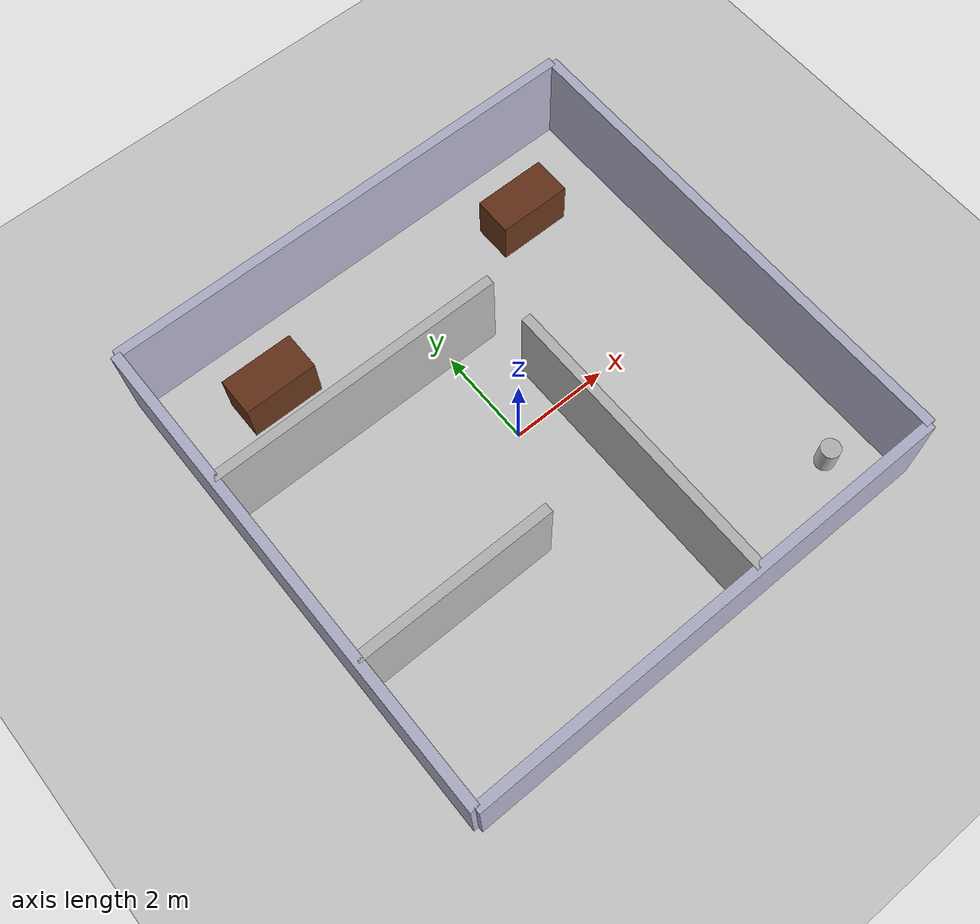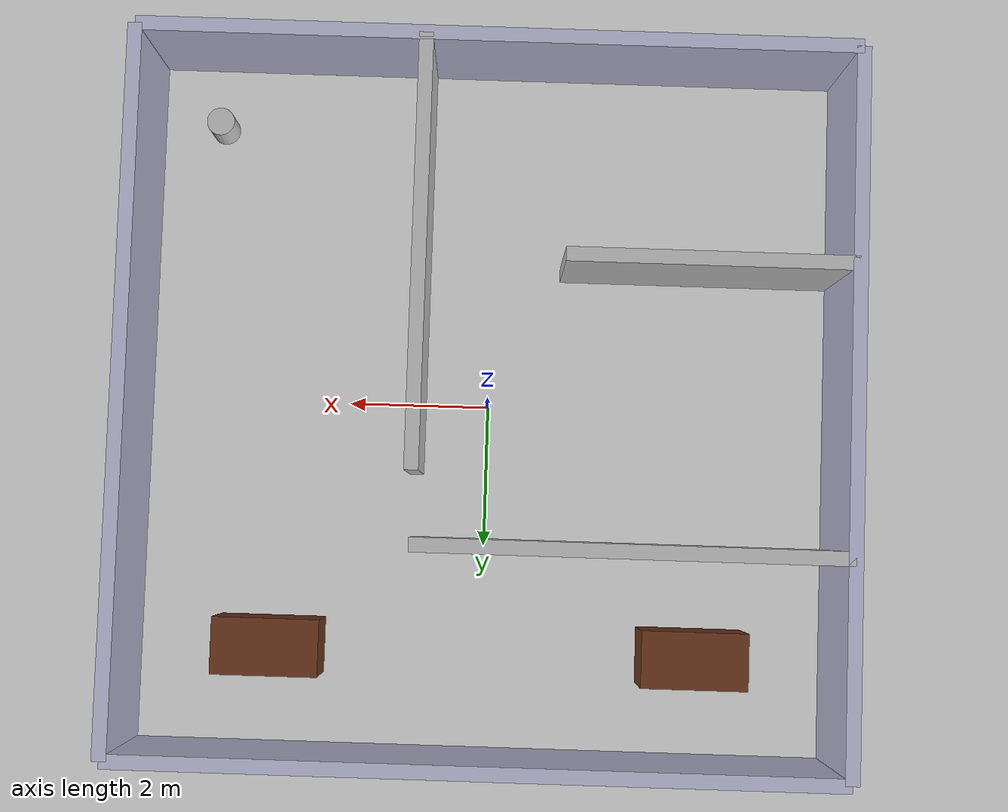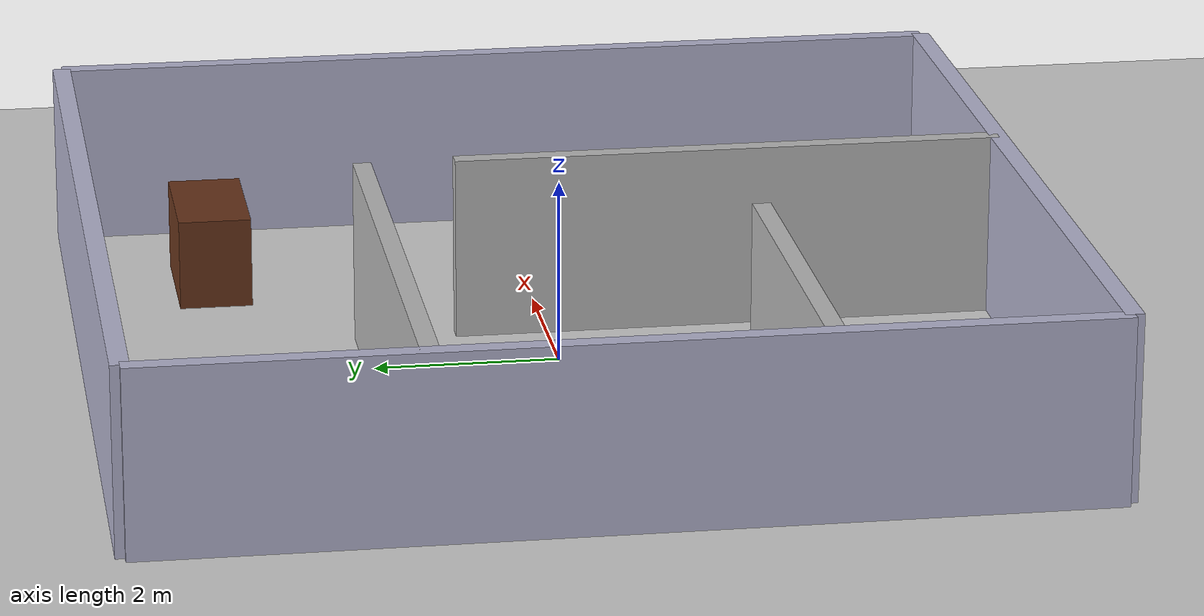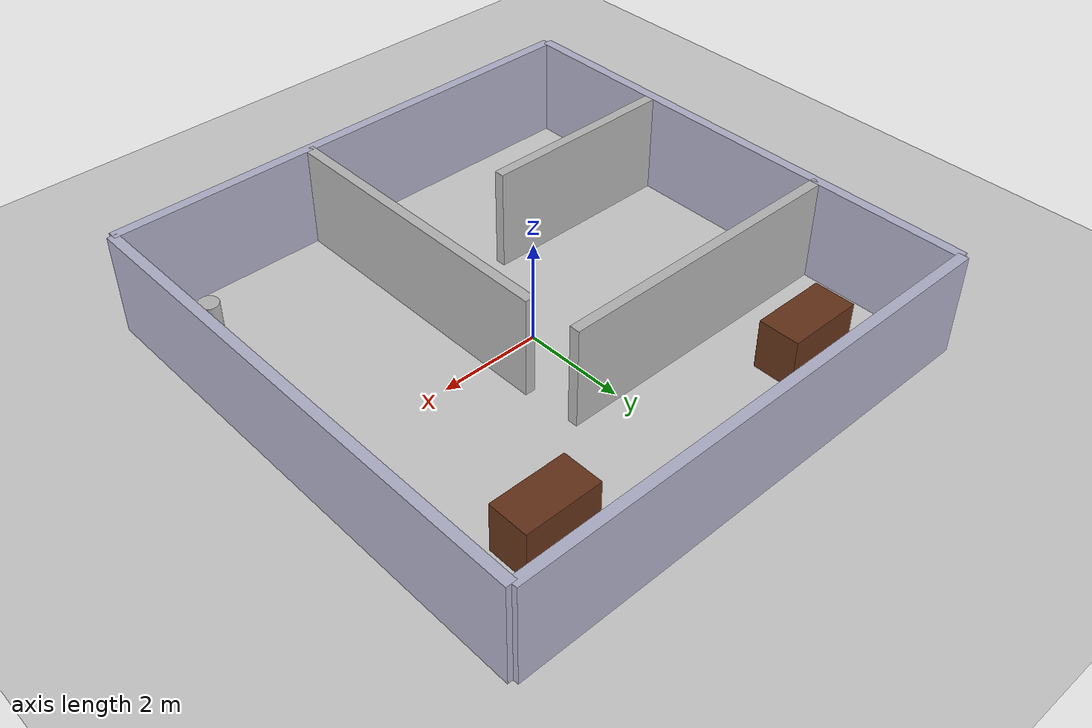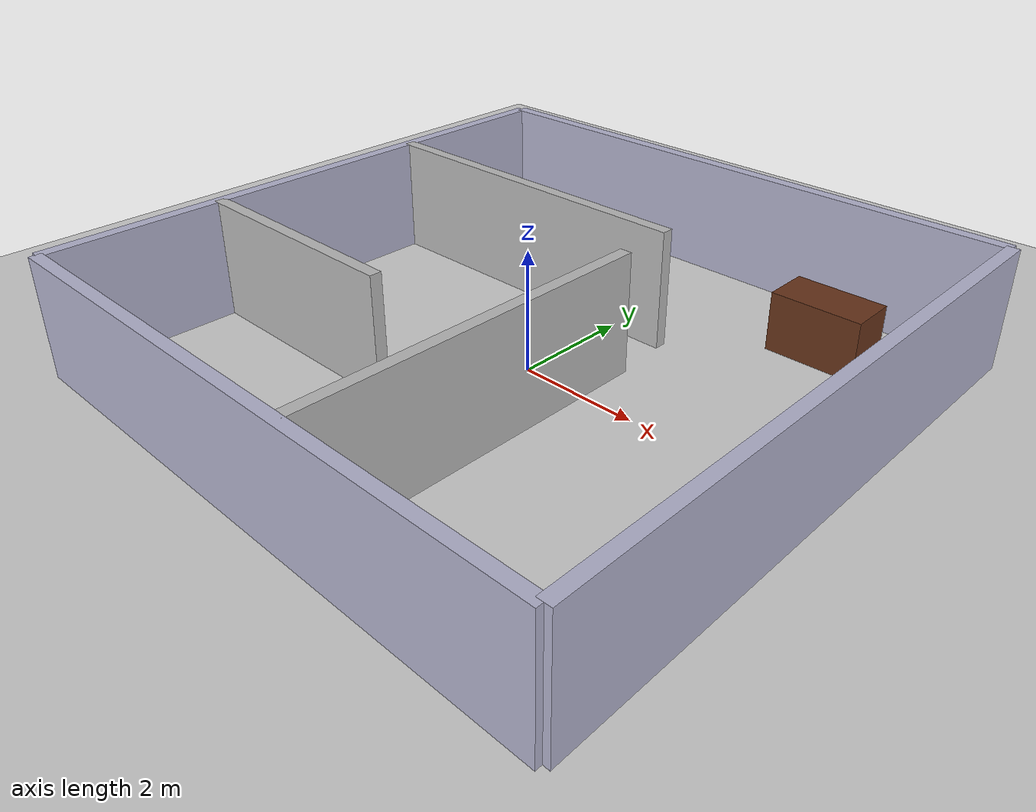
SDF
<?xml version="1.0"?>
<sdf version="1.10">
  <world name="world_1">
    <physics name="1ms" type="ignored">
      <max_step_size>0.001</max_step_size>
      <real_time_factor>1.0</real_time_factor>
    </physics>

    <plugin filename="gz-sim-physics-system" name="gz::sim::systems::Physics"/>
    <plugin filename="gz-sim-user-commands-system" name="gz::sim::systems::UserCommands"/>
    <plugin filename="gz-sim-scene-broadcaster-system" name="gz::sim::systems::SceneBroadcaster"/>
    <plugin filename="gz-sim-sensors-system" name="gz::sim::systems::Sensors">
      <render_engine>ogre2</render_engine>
    </plugin>

    <light type="directional" name="sun">
      <cast_shadows>true</cast_shadows>
      <pose>0 0 10 0 0 0</pose>
      <diffuse>0.95 0.95 0.95 1</diffuse>
      <specular>0.25 0.25 0.25 1</specular>
      <direction>-0.5 0.1 -0.9</direction>
    </light>

    <model name="ground_plane">
      <static>true</static>
      <link name="link">
        <collision name="collision">
          <geometry>
            <plane>
              <normal>0 0 1</normal>
              <size>100 100</size>
            </plane>
          </geometry>
        </collision>
        <visual name="visual">
          <geometry>
            <plane>
              <normal>0 0 1</normal>
              <size>100 100</size>
            </plane>
          </geometry>
          <material>
            <ambient>0.8 0.8 0.8 1</ambient>
            <diffuse>0.8 0.8 0.8 1</diffuse>
          </material>
        </visual>
      </link>
    </model>

    <!-- House/Office Layout -->
    <!-- Outer Walls (10x10m) -->
    <model name="outer_n"><static>true</static><pose>0 5 1 0 0 0</pose><link name="link"><collision name="c"><geometry><box><size>10 0.2 2</size></box></geometry></collision><visual name="v"><geometry><box><size>10 0.2 2</size></box></geometry><material><ambient>0.7 0.7 0.8 1</ambient><diffuse>0.7 0.7 0.8 1</diffuse></material></visual></link></model>
    <model name="outer_s"><static>true</static><pose>0 -5 1 0 0 0</pose><link name="link"><collision name="c"><geometry><box><size>10 0.2 2</size></box></geometry></collision><visual name="v"><geometry><box><size>10 0.2 2</size></box></geometry><material><ambient>0.7 0.7 0.8 1</ambient><diffuse>0.7 0.7 0.8 1</diffuse></material></visual></link></model>
    <model name="outer_w"><static>true</static><pose>-5 0 1 0 0 0</pose><link name="link"><collision name="c"><geometry><box><size>0.2 10 2</size></box></geometry></collision><visual name="v"><geometry><box><size>0.2 10 2</size></box></geometry><material><ambient>0.7 0.7 0.8 1</ambient><diffuse>0.7 0.7 0.8 1</diffuse></material></visual></link></model>
    <model name="outer_e"><static>true</static><pose>5 0 1 0 0 0</pose><link name="link"><collision name="c"><geometry><box><size>0.2 10 2</size></box></geometry></collision><visual name="v"><geometry><box><size>0.2 10 2</size></box></geometry><material><ambient>0.7 0.7 0.8 1</ambient><diffuse>0.7 0.7 0.8 1</diffuse></material></visual></link></model>

    <!-- Internal Rooms -->
    <!-- Room 1 Wall -->
    <model name="in_1"><static>true</static><pose>-2 2 1 0 0 0</pose><link name="link"><collision name="c"><geometry><box><size>6 0.2 2</size></box></geometry></collision><visual name="v"><geometry><box><size>6 0.2 2</size></box></geometry></visual></link></model>
    <!-- Room 2 Wall (Hallway) -->
    <model name="in_2"><static>true</static><pose>1 -2 1 0 0 0</pose><link name="link"><collision name="c"><geometry><box><size>0.2 6 2</size></box></geometry></collision><visual name="v"><geometry><box><size>0.2 6 2</size></box></geometry></visual></link></model>
    <!-- Room 3 Wall -->
    <model name="in_3"><static>true</static><pose>-3 -2 1 0 0 0</pose><link name="link"><collision name="c"><geometry><box><size>4 0.2 2</size></box></geometry></collision><visual name="v"><geometry><box><size>4 0.2 2</size></box></geometry></visual></link></model>

    <!-- Furniture / Obstacles -->
    <model name="desk_1"><static>true</static><pose>-3 3.5 0.5 0 0 0</pose><link name="link"><collision name="c"><geometry><box><size>1.5 0.8 1</size></box></geometry></collision><visual name="v"><geometry><box><size>1.5 0.8 1</size></box></geometry><material><ambient>0.4 0.2 0.1 1</ambient><diffuse>0.4 0.2 0.1 1</diffuse></material></visual></link></model>
    <model name="desk_2"><static>true</static><pose>3 3.5 0.5 0 0 0</pose><link name="link"><collision name="c"><geometry><box><size>1.5 0.8 1</size></box></geometry></collision><visual name="v"><geometry><box><size>1.5 0.8 1</size></box></geometry><material><ambient>0.4 0.2 0.1 1</ambient><diffuse>0.4 0.2 0.1 1</diffuse></material></visual></link></model>
    <model name="trash_bin"><static>true</static><pose>4 -4 0.3 0 0 0</pose><link name="link"><collision name="c"><geometry><cylinder><radius>0.2</radius><length>0.6</length></cylinder></geometry></collision><visual name="v"><geometry><cylinder><radius>0.2</radius><length>0.6</length></cylinder></geometry></visual></link></model>

  </world>
</sdf>
